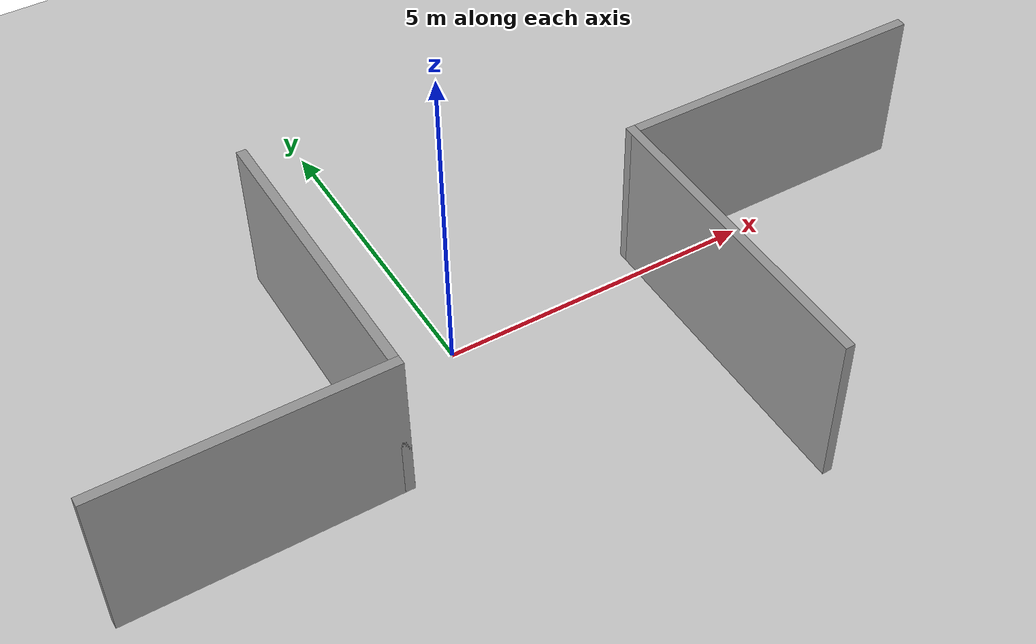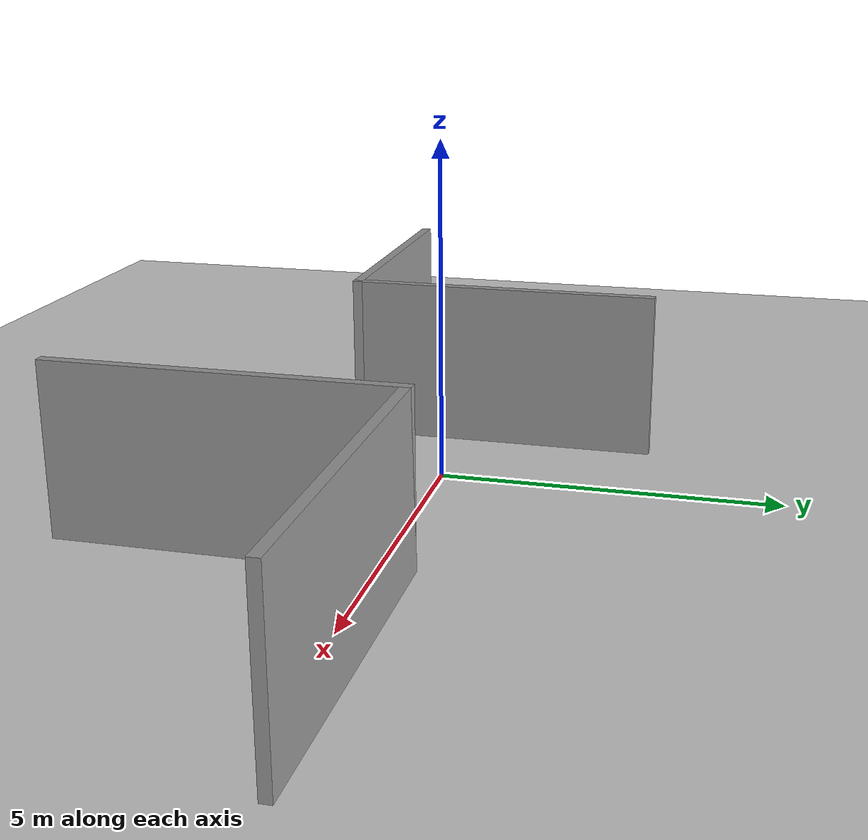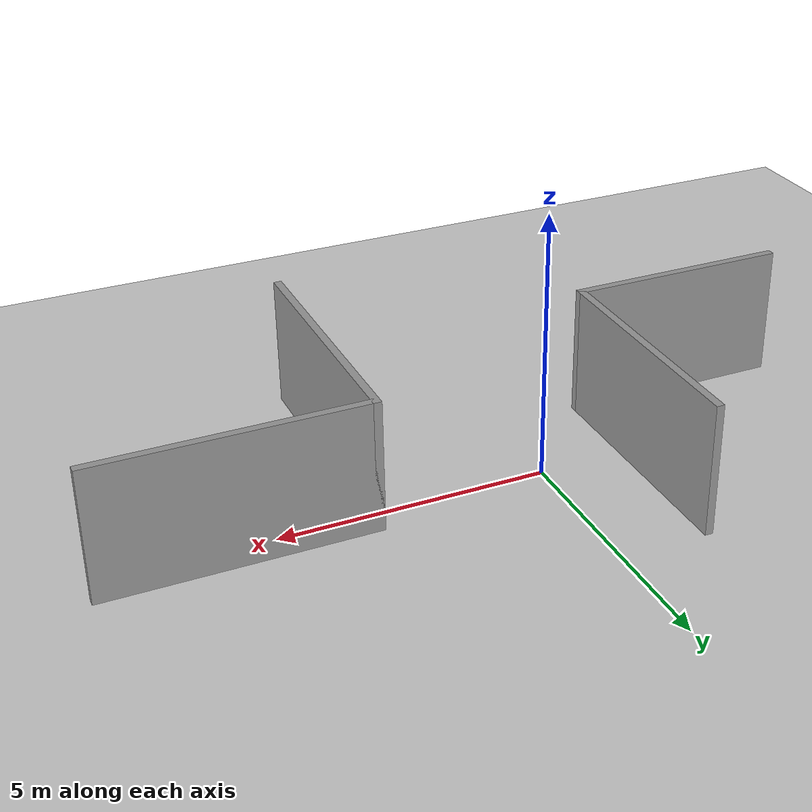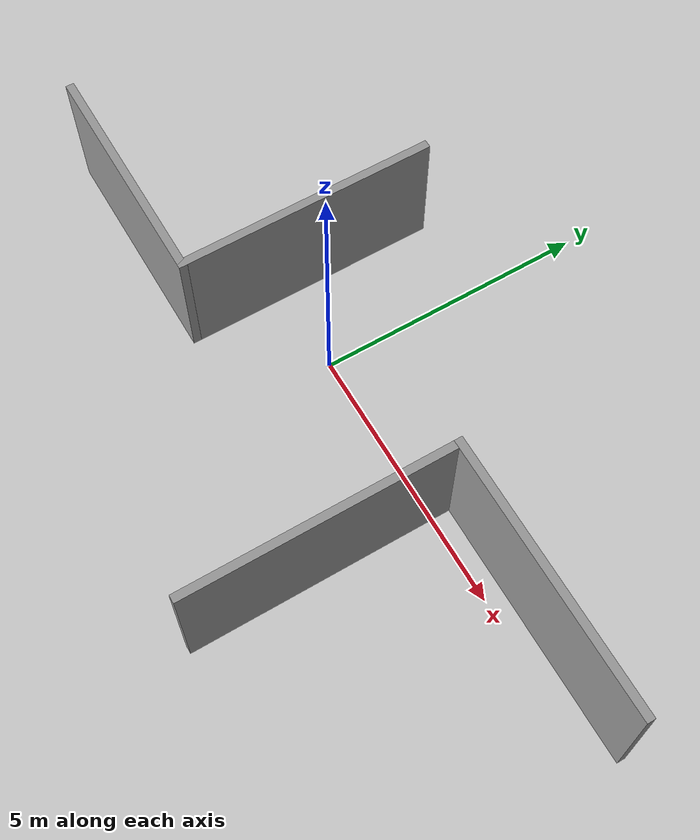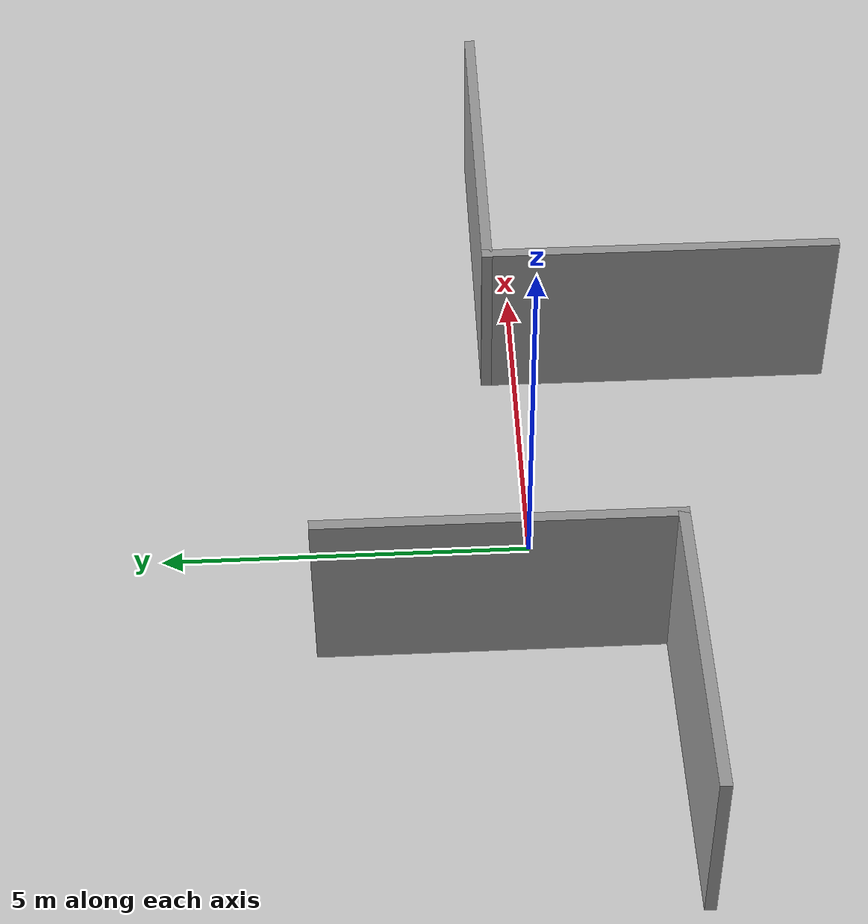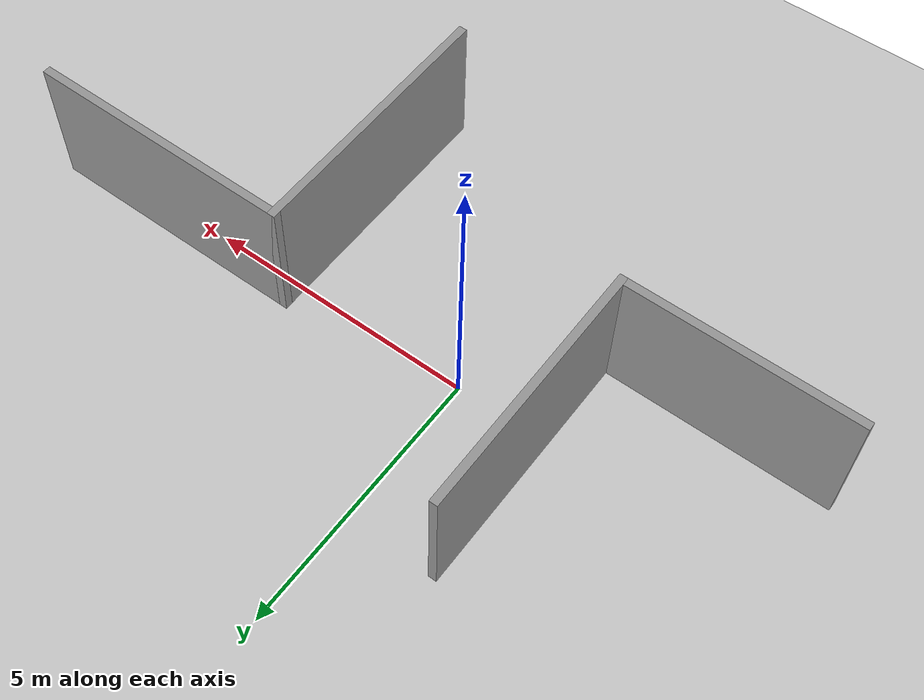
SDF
<sdf version="1.6">
 <world name="default">
  <physics name="default_physics" default="0" type="ode">
   <ode>
    <solver>
     <type>quick</type>
     <iters>100</iters>
     <sor>1</sor>
     <use_dynamic_moi_rescaling>0</use_dynamic_moi_rescaling>
    </solver>
    <constraints>
     <cfm>0</cfm>
     <erp>0.9</erp>
     <contact_max_correcting_vel>0.1</contact_max_correcting_vel>
     <contact_surface_layer>0</contact_surface_layer>
    </constraints>
   </ode>
   <real_time_update_rate>-1</real_time_update_rate>
   <max_step_size>0.001</max_step_size>
   <real_time_factor>1</real_time_factor>
  </physics>
  <light name="sun" type="directional">
   <pose>0 0 10 0 -0 0</pose>
   <diffuse>0.8 0.8 0.8 1</diffuse>
   <specular>0.2 0.2 0.2 1</specular>
   <attenuation>
    <range>1000</range>
    <constant>0.9</constant>
    <linear>0.01</linear>
    <quadratic>0.001</quadratic>
   </attenuation>
   <direction>-0.5 0.1 -0.9</direction>
  </light>
  <model name="ground_plane">
   <static>1</static>
   <link name="link">
    <collision name="collision">
     <geometry><plane><normal>0 0 1</normal><size>100 100</size></plane></geometry>
     <surface>
      <contact><collide_bitmask>65535</collide_bitmask></contact>
      <friction><ode><mu>100</mu><mu2>50</mu2></ode></friction>
     </surface>
    </collision>
    <visual name="visual">
     <cast_shadows>0</cast_shadows>
     <geometry><plane><normal>0 0 1</normal><size>100 100</size></plane></geometry>
     <material>
      <script><uri>file://media/materials/scripts/gazebo.material</uri><name>Gazebo/Grey</name></script>
     </material>
    </visual>
   </link>
  </model>
  <gravity>0 0 -9.8</gravity>
  <magnetic_field>6e-06 2.3e-05 -4.2e-05</magnetic_field>
  <atmosphere type="adiabatic"/>
  <scene><ambient>0.4 0.4 0.4 1</ambient><background>0.7 0.7 0.7 1</background><shadows>1</shadows></scene>
  <spherical_coordinates>
   <surface_model>EARTH_WGS84</surface_model>
   <latitude_deg>0</latitude_deg>
   <longitude_deg>0</longitude_deg>
   <elevation>0</elevation>
   <heading_deg>0</heading_deg>
  </spherical_coordinates>
  <model name="Untitled">
   <pose>1.19011 -0.80407 0 0 -0 0</pose>
   <link name="Wall_1">
    <collision name="Wall_1_Collision">
     <geometry><box><size>5 0.15 2.5</size></box></geometry>
     <pose>0 0 1.25 0 -0 0</pose>
    </collision>
    <visual name="Wall_1_Visual">
     <pose>0 0 1.25 0 -0 0</pose>
     <geometry><box><size>5 0.15 2.5</size></box></geometry>
     <material>
      <script><uri>file://media/materials/scripts/gazebo.material</uri><name>Gazebo/Grey</name></script>
      <ambient>1 1 1 1</ambient>
     </material>
     <meta><layer>0</layer></meta>
    </visual>
    <pose>2.10677 -1.20662 0 0 -0 -1.5708</pose>
   </link>
   <link name="Wall_3">
    <collision name="Wall_3_Collision">
     <geometry><box><size>5 0.15 2.5</size></box></geometry>
     <pose>0 0 1.25 0 -0 0</pose>
    </collision>
    <visual name="Wall_3_Visual">
     <pose>0 0 1.25 0 -0 0</pose>
     <geometry><box><size>5 0.15 2.5</size></box></geometry>
     <material>
      <script><uri>file://media/materials/scripts/gazebo.material</uri><name>Gazebo/Grey</name></script>
      <ambient>1 1 1 1</ambient>
     </material>
     <meta><layer>0</layer></meta>
    </visual>
    <pose>4.53177 1.21838 0 0 -0 0</pose>
   </link>
   <link name="Wall_6">
    <collision name="Wall_6_Collision">
     <geometry><box><size>4.75 0.15 2.5</size></box></geometry>
     <pose>0 0 1.25 0 -0 0</pose>
    </collision>
    <visual name="Wall_6_Visual">
     <pose>0 0 1.25 0 -0 0</pose>
     <geometry><box><size>4.75 0.15 2.5</size></box></geometry>
     <material>
      <script><uri>file://media/materials/scripts/gazebo.material</uri><name>Gazebo/Grey</name></script>
      <ambient>1 1 1 1</ambient>
     </material>
     <meta><layer>0</layer></meta>
    </visual>
    <pose>-2.85677 1.33162 0 0 -0 -1.5708</pose>
   </link>
   <link name="Wall_7">
    <collision name="Wall_7_Collision">
     <geometry><box><size>4.25 0.15 2.5</size></box></geometry>
     <pose>0 0 1.25 0 -0 0</pose>
    </collision>
    <visual name="Wall_7_Visual">
     <pose>0 0 1.25 0 -0 0</pose>
     <geometry><box><size>4.25 0.15 2.5</size></box></geometry>
     <material>
      <script><uri>file://media/materials/scripts/gazebo.material</uri><name>Gazebo/Grey</name></script>
      <ambient>1 1 1 1</ambient>
     </material>
     <meta><layer>0</layer></meta>
    </visual>
    <pose>-4.90677 -0.968376 0 0 -0 3.14159</pose>
   </link>
   <static>1</static>
  </model>
 </world>
</sdf>
